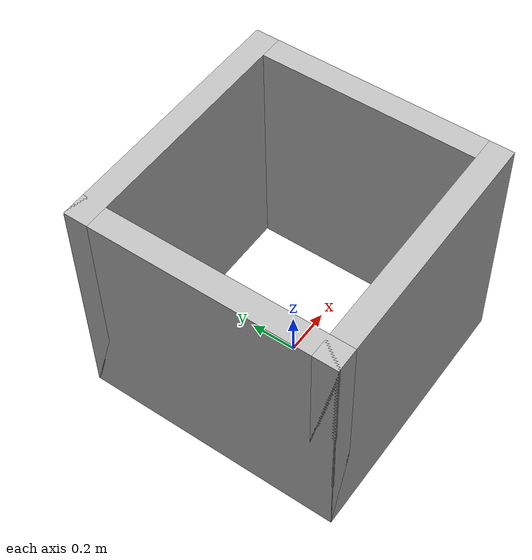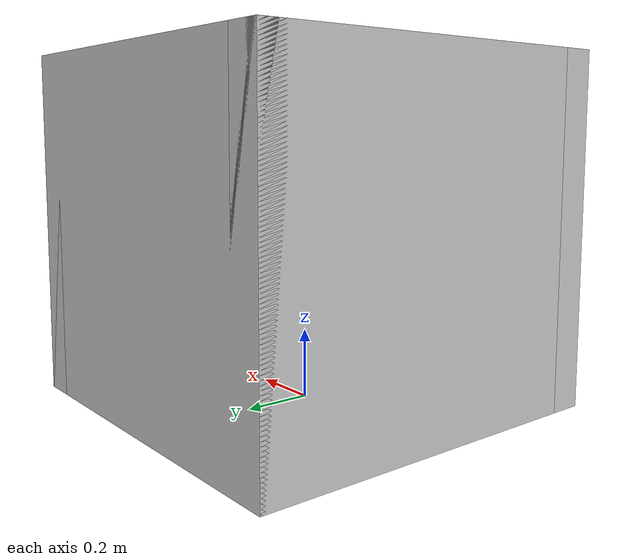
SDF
<?xml version="1.0" ?>
<sdf version="1.5">
<model name="arena_1m">
    <static>true</static>
    <link name="north_wall">
      <pose>0 0.5 0.5 0 0 0</pose>
      <visual name="visual">
        <geometry>
          <box>
            <size>1.1 0.1 1</size>
          </box>
        </geometry>
      </visual>
      <collision name="collision">
        <geometry>
          <box>
            <size>1.1 0.1 1</size>
          </box>
        </geometry>
      </collision>
    </link>
    <link name="south_wall">
      <pose>0 -0.5 0.5 0 0 0</pose>
      <visual name="visual">
        <geometry>
          <box>
            <size>1.1 0.1 1</size>
          </box>
        </geometry>
      </visual>
      <collision name="collision">
        <geometry>
          <box>
            <size>1.1 0.1 1</size>
          </box>
        </geometry>
      </collision>
    </link>
    <link name="east_wall">
      <pose>0.5 0 0.5 0 0 0</pose>
      <visual name="visual">
        <geometry>
          <box>
            <size>0.1 1.1 1</size>
          </box>
        </geometry>
      </visual>
      <collision name="collision">
        <geometry>
          <box>
            <size>0.1 1.1 1</size>
          </box>
        </geometry>
      </collision>
    </link>
    <link name="west_wall">
      <pose>-0.5 0 0.5 0 0 0</pose>
      <visual name="visual">
        <geometry>
          <box>
            <size>0.1 1.1 1</size>
          </box>
        </geometry>
      </visual>
      <collision name="collision">
        <geometry>
          <box>
            <size>0.1 1.1 1</size>
          </box>
        </geometry>
      </collision>
    </link>
  </model>
</sdf>
